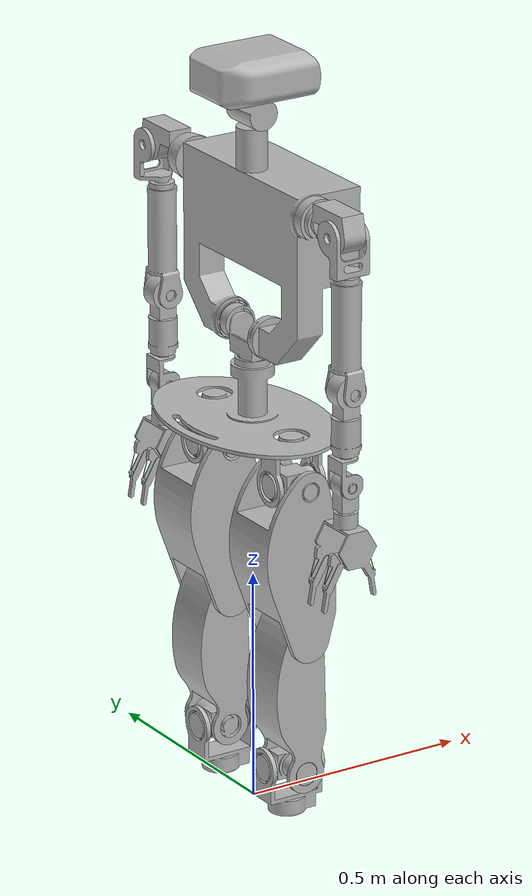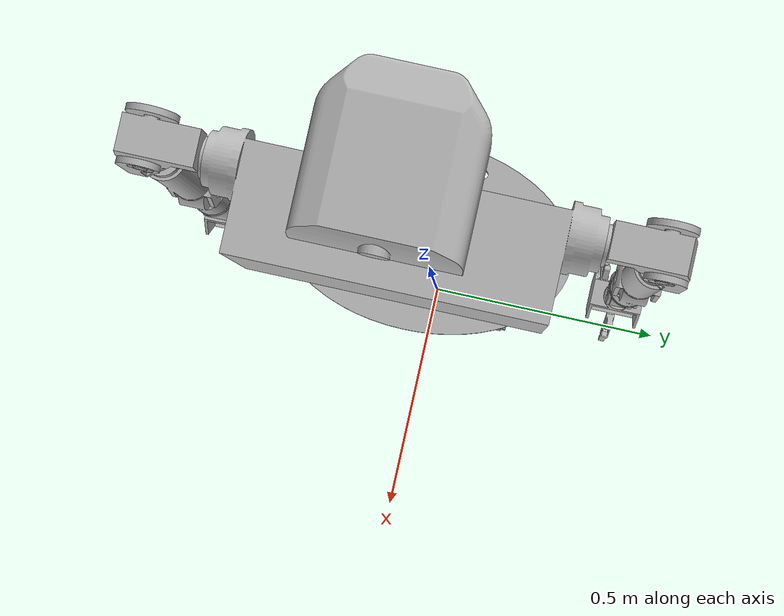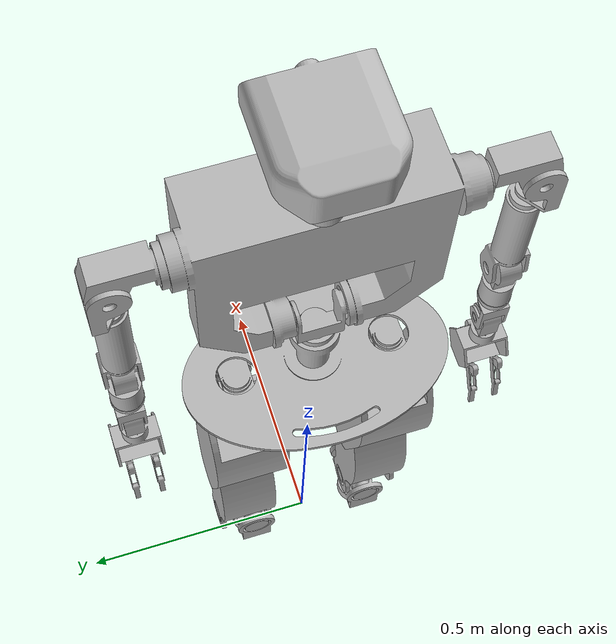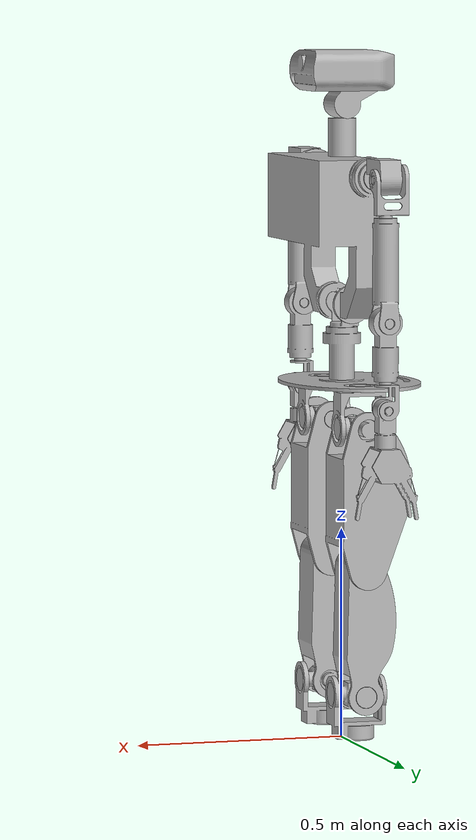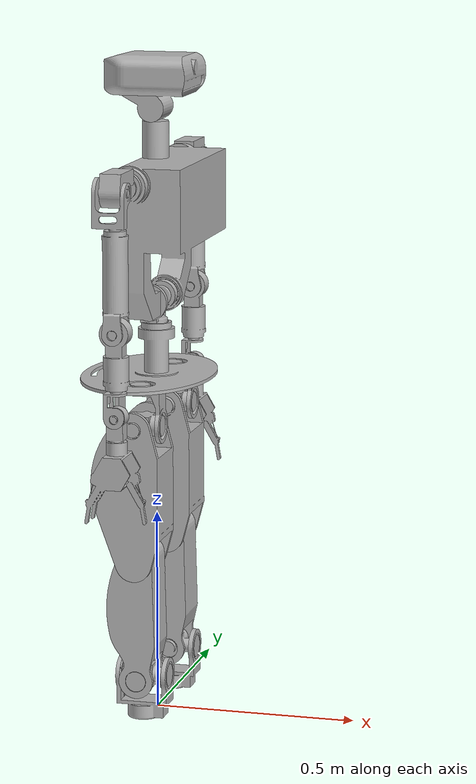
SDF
<?xml version='1.0'?>
<sdf version='1.6'>
  <model name='teo'>

    <link name='RootWaist_links'>
      <pose>0 0 0 0 -0 0</pose>
      <inertial>
        <pose>-0.010985 -0.000323 0.033148 0 -0 0</pose>
        <mass>2.5</mass>
        <inertia>
          <ixx>0.038530767</ixx>
          <ixy>-0.000000135</ixy>
          <ixz>0.000238121</ixz>
          <iyy>0.017354343</iyy>
          <iyz>-4.8e-10</iyz>
          <izz>0.053231634</izz>
        </inertia>
      </inertial>
      <visual name='RootWaist_links_visual'>
        <geometry>
          <mesh>
            <uri>model://teo/meshes/visual/RootWaist_links.dae</uri>
          </mesh>
        </geometry>
      </visual>
    </link>

    <include>
      <pose>0 0 0.1932 0 -0 0</pose>
      <uri>model://teo/trunk</uri>
    </include>

    <include>
      <pose>0 0 0.6282 0 -0 0</pose>
      <uri>model://teo/head</uri>
    </include>

    <include>
      <pose>0 -0.26292 0.4982 0 -0 0</pose>
      <uri>model://teo/rightArm</uri>
    </include>

    <include>
      <pose>0 0.26292 0.4982 0 -0 0</pose>
      <uri>model://teo/leftArm</uri>
    </include>

    <include>
      <pose>0 -0.146 0 0 -0 0</pose>
      <uri>model://teo/rightLeg</uri>
    </include>

    <include>
      <pose>0 0.146 0 0 -0 0</pose>
      <uri>model://teo/leftLeg</uri>
    </include>

    <pose>0 0 0.845 0 -0 0</pose>

  </model>
</sdf>
